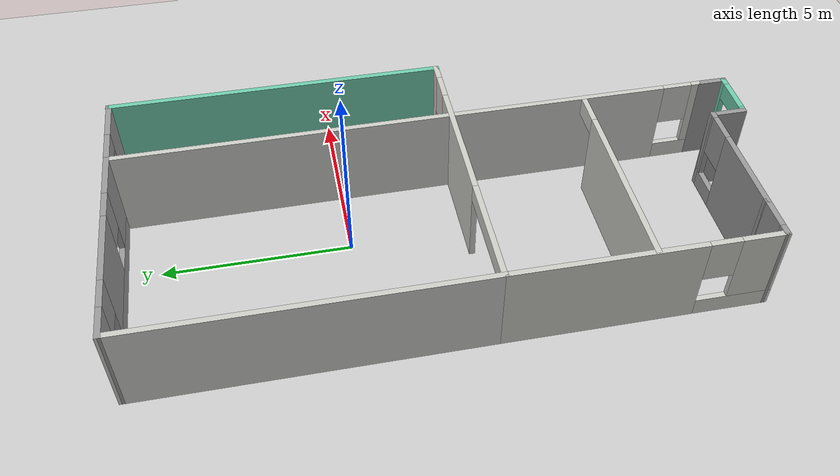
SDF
<sdf version="1.6">
 <world name="default">
  <model name="ground_plane">
   <static>1</static>
   <link name="link">
    <collision name="collision">
     <geometry><plane><normal>0 0 1</normal><size>100 100</size></plane></geometry>
     <surface>
      <contact><collide_bitmask>65535</collide_bitmask></contact>
      <friction><ode><mu>100</mu><mu2>50</mu2></ode></friction>
     </surface>
    </collision>
    <visual name="visual">
     <cast_shadows>0</cast_shadows>
     <geometry><plane><normal>0 0 1</normal><size>100 100</size></plane></geometry>
     <material>
      <script><uri>file://media/materials/scripts/gazebo.material</uri><name>Gazebo/Grey</name></script>
     </material>
    </visual>
   </link>
  </model>
  <model name="floor_plan">
   <pose>0.13995 -2.45491 0 0 -0 0</pose>
   <link name="Wall_1">
    <collision name="Wall_1_Collision">
     <geometry><box><size>9.18001 0.15 2.5</size></box></geometry>
     <pose>0 0 1.25 0 -0 0</pose>
    </collision>
    <visual name="Wall_1_Visual">
     <pose>0 0 1.25 0 -0 0</pose>
     <geometry><box><size>9.18001 0.15 2.5</size></box></geometry>
     <material>
      <script><uri>file://media/materials/scripts/gazebo.material</uri><name>Gazebo/CeilingTiled</name></script>
      <ambient>1 1 1 1</ambient>
     </material>
     <meta><layer>0</layer></meta>
    </visual>
    <pose>-3.92495 3.8599 0 0 -0 1.5719</pose>
   </link>
   <link name="Wall_11">
    <pose>-3.92495 -4.0901 0 0 0 -1.57225</pose>
    <visual name="Wall_11_Visual_0">
     <pose>-0.997456 0 1.25 0 -0 0</pose>
     <geometry><box><size>5.0251 0.15 2.5</size></box></geometry>
     <material>
      <script><uri>file://media/materials/scripts/gazebo.material</uri><name>Gazebo/CeilingTiled</name></script>
      <ambient>0.435294 0.796078 0.67451 1</ambient>
     </material>
     <meta><layer>0</layer></meta>
    </visual>
    <collision name="Wall_11_Collision_0">
     <geometry><box><size>5.0251 0.15 2.5</size></box></geometry>
     <pose>-0.997456 0 1.25 0 -0 0</pose>
    </collision>
    <visual name="Wall_11_Visual_1">
     <pose>2.51255 0 0.25 0 -0 0</pose>
     <geometry><box><size>1.99491 0.15 0.5</size></box></geometry>
     <material>
      <script><uri>file://media/materials/scripts/gazebo.material</uri><name>Gazebo/CeilingTiled</name></script>
      <ambient>0.435294 0.796078 0.67451 1</ambient>
     </material>
     <meta><layer>0</layer></meta>
    </visual>
    <collision name="Wall_11_Collision_1">
     <geometry><box><size>1.99491 0.15 0.5</size></box></geometry>
     <pose>2.51255 0 0.25 0 -0 0</pose>
    </collision>
    <visual name="Wall_11_Visual_2">
     <pose>2.91255 0 1.5 0 -0 0</pose>
     <geometry><box><size>1.19491 0.15 2</size></box></geometry>
     <material>
      <script><uri>file://media/materials/scripts/gazebo.material</uri><name>Gazebo/CeilingTiled</name></script>
      <ambient>0.435294 0.796078 0.67451 1</ambient>
     </material>
     <meta><layer>0</layer></meta>
    </visual>
    <collision name="Wall_11_Collision_2">
     <geometry><box><size>1.19491 0.15 2</size></box></geometry>
     <pose>2.91255 0 1.5 0 -0 0</pose>
    </collision>
    <visual name="Wall_11_Visual_3">
     <pose>1.91509 0 1.9 0 -0 0</pose>
     <geometry><box><size>0.8 0.15 1.2</size></box></geometry>
     <material>
      <script><uri>file://media/materials/scripts/gazebo.material</uri><name>Gazebo/CeilingTiled</name></script>
      <ambient>0.435294 0.796078 0.67451 1</ambient>
     </material>
     <meta><layer>0</layer></meta>
    </visual>
    <collision name="Wall_11_Collision_3">
     <geometry><box><size>0.8 0.15 1.2</size></box></geometry>
     <pose>1.91509 0 1.9 0 -0 0</pose>
    </collision>
   </link>
   <link name="Wall_24">
    <pose>-3.37995 -7.5251 0 0 -0 0</pose>
    <visual name="Wall_24_Visual_0">
     <pose>-0.4625 0 1.25 0 -0 0</pose>
     <geometry><box><size>0.325 0.15 2.5</size></box></geometry>
     <material>
      <script><uri>file://media/materials/scripts/gazebo.material</uri><name>Gazebo/Grey</name></script>
      <ambient>1 1 1 1</ambient>
     </material>
     <meta><layer>0</layer></meta>
    </visual>
    <collision name="Wall_24_Collision_0">
     <geometry><box><size>0.325 0.15 2.5</size></box></geometry>
     <pose>-0.4625 0 1.25 0 -0 0</pose>
    </collision>
    <visual name="Wall_24_Visual_1">
     <pose>0.1625 0 0.25 0 -0 0</pose>
     <geometry><box><size>0.925 0.15 0.5</size></box></geometry>
     <material>
      <script><uri>file://media/materials/scripts/gazebo.material</uri><name>Gazebo/Grey</name></script>
      <ambient>1 1 1 1</ambient>
     </material>
     <meta><layer>0</layer></meta>
    </visual>
    <collision name="Wall_24_Collision_1">
     <geometry><box><size>0.925 0.15 0.5</size></box></geometry>
     <pose>0.1625 0 0.25 0 -0 0</pose>
    </collision>
    <visual name="Wall_24_Visual_2">
     <pose>0.5625 0 1.5 0 -0 0</pose>
     <geometry><box><size>0.125 0.15 2</size></box></geometry>
     <material>
      <script><uri>file://media/materials/scripts/gazebo.material</uri><name>Gazebo/Grey</name></script>
      <ambient>1 1 1 1</ambient>
     </material>
     <meta><layer>0</layer></meta>
    </visual>
    <collision name="Wall_24_Collision_2">
     <geometry><box><size>0.125 0.15 2</size></box></geometry>
     <pose>0.5625 0 1.5 0 -0 0</pose>
    </collision>
    <visual name="Wall_24_Visual_3">
     <pose>0.1 0 1.9 0 -0 0</pose>
     <geometry><box><size>0.8 0.15 1.2</size></box></geometry>
     <material>
      <script><uri>file://media/materials/scripts/gazebo.material</uri><name>Gazebo/Grey</name></script>
      <ambient>1 1 1 1</ambient>
     </material>
     <meta><layer>0</layer></meta>
    </visual>
    <collision name="Wall_24_Collision_3">
     <geometry><box><size>0.8 0.15 1.2</size></box></geometry>
     <pose>0.1 0 1.9 0 -0 0</pose>
    </collision>
   </link>
   <link name="Wall_27">
    <pose>-1.15495 -7.5251 0 0 -0 0</pose>
    <visual name="Wall_27_Visual_0">
     <pose>-0.5175 0 1.25 0 -0 0</pose>
     <geometry><box><size>2.465 0.15 2.5</size></box></geometry>
     <material>
      <script><uri>file://media/materials/scripts/gazebo.material</uri><name>Gazebo/Grey</name></script>
      <ambient>1 1 1 1</ambient>
     </material>
     <meta><layer>0</layer></meta>
    </visual>
    <collision name="Wall_27_Collision_0">
     <geometry><box><size>2.465 0.15 2.5</size></box></geometry>
     <pose>-0.5175 0 1.25 0 -0 0</pose>
    </collision>
    <visual name="Wall_27_Visual_1">
     <pose>1.2325 0 0.25 0 -0 0</pose>
     <geometry><box><size>1.035 0.15 0.5</size></box></geometry>
     <material>
      <script><uri>file://media/materials/scripts/gazebo.material</uri><name>Gazebo/Grey</name></script>
      <ambient>1 1 1 1</ambient>
     </material>
     <meta><layer>0</layer></meta>
    </visual>
    <collision name="Wall_27_Collision_1">
     <geometry><box><size>1.035 0.15 0.5</size></box></geometry>
     <pose>1.2325 0 0.25 0 -0 0</pose>
    </collision>
    <visual name="Wall_27_Visual_2">
     <pose>1.6325 0 1.5 0 -0 0</pose>
     <geometry><box><size>0.235 0.15 2</size></box></geometry>
     <material>
      <script><uri>file://media/materials/scripts/gazebo.material</uri><name>Gazebo/Grey</name></script>
      <ambient>1 1 1 1</ambient>
     </material>
     <meta><layer>0</layer></meta>
    </visual>
    <collision name="Wall_27_Collision_2">
     <geometry><box><size>0.235 0.15 2</size></box></geometry>
     <pose>1.6325 0 1.5 0 -0 0</pose>
    </collision>
    <visual name="Wall_27_Visual_3">
     <pose>1.115 0 1.9 0 -0 0</pose>
     <geometry><box><size>0.8 0.15 1.2</size></box></geometry>
     <material>
      <script><uri>file://media/materials/scripts/gazebo.material</uri><name>Gazebo/Grey</name></script>
      <ambient>1 1 1 1</ambient>
     </material>
     <meta><layer>0</layer></meta>
    </visual>
    <collision name="Wall_27_Collision_3">
     <geometry><box><size>0.8 0.15 1.2</size></box></geometry>
     <pose>1.115 0 1.9 0 -0 0</pose>
    </collision>
   </link>
   <link name="Wall_28">
    <collision name="Wall_28_Collision">
     <geometry><box><size>1 0.15 2.5</size></box></geometry>
     <pose>0 0 1.25 0 -0 0</pose>
    </collision>
    <visual name="Wall_28_Visual">
     <pose>0 0 1.25 0 -0 0</pose>
     <geometry><box><size>1 0.15 2.5</size></box></geometry>
     <material>
      <script><uri>file://media/materials/scripts/gazebo.material</uri><name>Gazebo/Grey</name></script>
      <ambient>1 1 1 1</ambient>
     </material>
     <meta><layer>0</layer></meta>
    </visual>
    <pose>0.520047 -7.9501 0 0 0 -1.5708</pose>
   </link>
   <link name="Wall_29">
    <pose>1.19505 -8.37509 0 0 -0 0</pose>
    <visual name="Wall_29_Visual_0">
     <pose>-0.635 0 1.25 0 -0 0</pose>
     <geometry><box><size>0.23 0.15 2.5</size></box></geometry>
     <material>
      <script><uri>file://media/materials/scripts/gazebo.material</uri><name>Gazebo/Grey</name></script>
      <ambient>0.435294 0.796078 0.67451 1</ambient>
     </material>
     <meta><layer>0</layer></meta>
    </visual>
    <collision name="Wall_29_Collision_0">
     <geometry><box><size>0.23 0.15 2.5</size></box></geometry>
     <pose>-0.635 0 1.25 0 -0 0</pose>
    </collision>
    <visual name="Wall_29_Visual_1">
     <pose>0.61 0 1.25 0 -0 0</pose>
     <geometry><box><size>0.28 0.15 2.5</size></box></geometry>
     <material>
      <script><uri>file://media/materials/scripts/gazebo.material</uri><name>Gazebo/Grey</name></script>
      <ambient>0.435294 0.796078 0.67451 1</ambient>
     </material>
     <meta><layer>0</layer></meta>
    </visual>
    <collision name="Wall_29_Collision_1">
     <geometry><box><size>0.28 0.15 2.5</size></box></geometry>
     <pose>0.61 0 1.25 0 -0 0</pose>
    </collision>
    <visual name="Wall_29_Visual_2">
     <pose>-0.025 0 2.25 0 -0 0</pose>
     <geometry><box><size>0.99 0.15 0.5</size></box></geometry>
     <material>
      <script><uri>file://media/materials/scripts/gazebo.material</uri><name>Gazebo/Grey</name></script>
      <ambient>0.435294 0.796078 0.67451 1</ambient>
     </material>
     <meta><layer>0</layer></meta>
    </visual>
    <collision name="Wall_29_Collision_2">
     <geometry><box><size>0.99 0.15 0.5</size></box></geometry>
     <pose>-0.025 0 2.25 0 -0 0</pose>
    </collision>
   </link>
   <link name="Wall_3">
    <pose>0.005047 -0.645095 0 0 -0 0</pose>
    <visual name="Wall_3_Visual_0">
     <pose>-3.9325 0 1.25 0 -0 0</pose>
     <geometry><box><size>0.135 0.15 2.5</size></box></geometry>
     <material>
      <script><uri>file://media/materials/scripts/gazebo.material</uri><name>Gazebo/CeilingTiled</name></script>
      <ambient>1 1 1 1</ambient>
     </material>
     <meta><layer>0</layer></meta>
    </visual>
    <collision name="Wall_3_Collision_0">
     <geometry><box><size>0.135 0.15 2.5</size></box></geometry>
     <pose>-3.9325 0 1.25 0 -0 0</pose>
    </collision>
    <visual name="Wall_3_Visual_1">
     <pose>0.855 0 1.25 0 -0 0</pose>
     <geometry><box><size>3.64 0.15 2.5</size></box></geometry>
     <material>
      <script><uri>file://media/materials/scripts/gazebo.material</uri><name>Gazebo/CeilingTiled</name></script>
      <ambient>1 1 1 1</ambient>
     </material>
     <meta><layer>0</layer></meta>
    </visual>
    <collision name="Wall_3_Collision_1">
     <geometry><box><size>3.64 0.15 2.5</size></box></geometry>
     <pose>0.855 0 1.25 0 -0 0</pose>
    </collision>
    <visual name="Wall_3_Visual_2">
     <pose>3.3375 0 0.25 0 -0 0</pose>
     <geometry><box><size>1.325 0.15 0.5</size></box></geometry>
     <material>
      <script><uri>file://media/materials/scripts/gazebo.material</uri><name>Gazebo/CeilingTiled</name></script>
      <ambient>1 1 1 1</ambient>
     </material>
     <meta><layer>0</layer></meta>
    </visual>
    <collision name="Wall_3_Collision_2">
     <geometry><box><size>1.325 0.15 0.5</size></box></geometry>
     <pose>3.3375 0 0.25 0 -0 0</pose>
    </collision>
    <visual name="Wall_3_Visual_3">
     <pose>3.7375 0 1.5 0 -0 0</pose>
     <geometry><box><size>0.525 0.15 2</size></box></geometry>
     <material>
      <script><uri>file://media/materials/scripts/gazebo.material</uri><name>Gazebo/CeilingTiled</name></script>
      <ambient>1 1 1 1</ambient>
     </material>
     <meta><layer>0</layer></meta>
    </visual>
    <collision name="Wall_3_Collision_3">
     <geometry><box><size>0.525 0.15 2</size></box></geometry>
     <pose>3.7375 0 1.5 0 -0 0</pose>
    </collision>
    <visual name="Wall_3_Visual_4">
     <pose>3.075 0 1.9 0 -0 0</pose>
     <geometry><box><size>0.8 0.15 1.2</size></box></geometry>
     <material>
      <script><uri>file://media/materials/scripts/gazebo.material</uri><name>Gazebo/CeilingTiled</name></script>
      <ambient>1 1 1 1</ambient>
     </material>
     <meta><layer>0</layer></meta>
    </visual>
    <collision name="Wall_3_Collision_4">
     <geometry><box><size>0.8 0.15 1.2</size></box></geometry>
     <pose>3.075 0 1.9 0 -0 0</pose>
    </collision>
    <visual name="Wall_3_Visual_5">
     <pose>-2.415 0 2.25 0 -0 0</pose>
     <geometry><box><size>2.9 0.15 0.5</size></box></geometry>
     <material>
      <script><uri>file://media/materials/scripts/gazebo.material</uri><name>Gazebo/CeilingTiled</name></script>
      <ambient>1 1 1 1</ambient>
     </material>
     <meta><layer>0</layer></meta>
    </visual>
    <collision name="Wall_3_Collision_5">
     <geometry><box><size>2.9 0.15 0.5</size></box></geometry>
     <pose>-2.415 0 2.25 0 -0 0</pose>
    </collision>
   </link>
   <link name="Wall_30">
    <collision name="Wall_30_Collision">
     <geometry><box><size>0.91 0.15 2.5</size></box></geometry>
     <pose>0 0 1.25 0 -0 0</pose>
    </collision>
    <visual name="Wall_30_Visual">
     <pose>0 0 1.25 0 -0 0</pose>
     <geometry><box><size>0.91 0.15 2.5</size></box></geometry>
     <material>
      <script><uri>file://media/materials/scripts/gazebo.material</uri><name>Gazebo/Grey</name></script>
      <ambient>1 1 1 1</ambient>
     </material>
     <meta><layer>0</layer></meta>
    </visual>
    <pose>1.87005 -7.9951 0 0 -0 1.5708</pose>
   </link>
   <link name="Wall_32">
    <pose>-1.08995 -4.3251 0 0 -0 0</pose>
    <visual name="Wall_32_Visual_0">
     <pose>-0.4375 0 1.25 0 -0 0</pose>
     <geometry><box><size>4.875 0.15 2.5</size></box></geometry>
     <material>
      <script><uri>file://media/materials/scripts/gazebo.material</uri><name>Gazebo/CeilingTiled</name></script>
      <ambient>1 1 1 1</ambient>
     </material>
     <meta><layer>0</layer></meta>
    </visual>
    <collision name="Wall_32_Collision_0">
     <geometry><box><size>4.875 0.15 2.5</size></box></geometry>
     <pose>-0.4375 0 1.25 0 -0 0</pose>
    </collision>
    <visual name="Wall_32_Visual_1">
     <pose>2.4375 0 2.25 0 -0 0</pose>
     <geometry><box><size>0.875 0.15 0.5</size></box></geometry>
     <material>
      <script><uri>file://media/materials/scripts/gazebo.material</uri><name>Gazebo/CeilingTiled</name></script>
      <ambient>1 1 1 1</ambient>
     </material>
     <meta><layer>0</layer></meta>
    </visual>
    <collision name="Wall_32_Collision_1">
     <geometry><box><size>0.875 0.15 0.5</size></box></geometry>
     <pose>2.4375 0 2.25 0 -0 0</pose>
    </collision>
   </link>
   <link name="Wall_5">
    <collision name="Wall_5_Collision">
     <geometry><box><size>9.16001 0.15 2.5</size></box></geometry>
     <pose>0 0 1.25 0 -0 0</pose>
    </collision>
    <visual name="Wall_5_Visual">
     <pose>0 0 1.25 0 -0 0</pose>
     <geometry><box><size>9.16001 0.15 2.5</size></box></geometry>
     <material>
      <script><uri>file://media/materials/scripts/gazebo.material</uri><name>Gazebo/Grey</name></script>
      <ambient>0.435294 0.796078 0.67451 1</ambient>
     </material>
     <meta><layer>0</layer></meta>
    </visual>
    <pose>3.92505 3.8599 0 0 -0 1.57191</pose>
   </link>
   <link name="Wall_7">
    <pose>-0.004953 8.3649 0 0 0 -0.002548</pose>
    <visual name="Wall_7_Visual_0">
     <pose>-3.55751 0 1.25 0 -0 0</pose>
     <geometry><box><size>0.884983 0.15 2.5</size></box></geometry>
     <material>
      <script><uri>file://media/materials/scripts/gazebo.material</uri><name>Gazebo/Grey</name></script>
      <ambient>1 1 1 1</ambient>
     </material>
     <meta><layer>0</layer></meta>
    </visual>
    <collision name="Wall_7_Collision_0">
     <geometry><box><size>0.884983 0.15 2.5</size></box></geometry>
     <pose>-3.55751 0 1.25 0 -0 0</pose>
    </collision>
    <visual name="Wall_7_Visual_1">
     <pose>3.3878 0 1.25 0 -0 0</pose>
     <geometry><box><size>1.2244 0.15 2.5</size></box></geometry>
     <material>
      <script><uri>file://media/materials/scripts/gazebo.material</uri><name>Gazebo/Grey</name></script>
      <ambient>1 1 1 1</ambient>
     </material>
     <meta><layer>0</layer></meta>
    </visual>
    <collision name="Wall_7_Collision_1">
     <geometry><box><size>1.2244 0.15 2.5</size></box></geometry>
     <pose>3.3878 0 1.25 0 -0 0</pose>
    </collision>
    <visual name="Wall_7_Visual_2">
     <pose>-0.619706 0 0.25 0 -0 0</pose>
     <geometry><box><size>4.99062 0.15 0.5</size></box></geometry>
     <material>
      <script><uri>file://media/materials/scripts/gazebo.material</uri><name>Gazebo/Grey</name></script>
      <ambient>1 1 1 1</ambient>
     </material>
     <meta><layer>0</layer></meta>
    </visual>
    <collision name="Wall_7_Collision_2">
     <geometry><box><size>4.99062 0.15 0.5</size></box></geometry>
     <pose>-0.619706 0 0.25 0 -0 0</pose>
    </collision>
    <visual name="Wall_7_Visual_3">
     <pose>-1.2851 0 1.5 0 -0 0</pose>
     <geometry><box><size>2.05984 0.15 2</size></box></geometry>
     <material>
      <script><uri>file://media/materials/scripts/gazebo.material</uri><name>Gazebo/Grey</name></script>
      <ambient>1 1 1 1</ambient>
     </material>
     <meta><layer>0</layer></meta>
    </visual>
    <collision name="Wall_7_Collision_3">
     <geometry><box><size>2.05984 0.15 2</size></box></geometry>
     <pose>-1.2851 0 1.5 0 -0 0</pose>
    </collision>
    <visual name="Wall_7_Visual_4">
     <pose>1.21021 0 1.5 0 -0 0</pose>
     <geometry><box><size>1.33078 0.15 2</size></box></geometry>
     <material>
      <script><uri>file://media/materials/scripts/gazebo.material</uri><name>Gazebo/Grey</name></script>
      <ambient>1 1 1 1</ambient>
     </material>
     <meta><layer>0</layer></meta>
    </visual>
    <collision name="Wall_7_Collision_4">
     <geometry><box><size>1.33078 0.15 2</size></box></geometry>
     <pose>1.21021 0 1.5 0 -0 0</pose>
    </collision>
    <visual name="Wall_7_Visual_5">
     <pose>-2.71502 0 1.9 0 -0 0</pose>
     <geometry><box><size>0.8 0.15 1.2</size></box></geometry>
     <material>
      <script><uri>file://media/materials/scripts/gazebo.material</uri><name>Gazebo/Grey</name></script>
      <ambient>1 1 1 1</ambient>
     </material>
     <meta><layer>0</layer></meta>
    </visual>
    <collision name="Wall_7_Collision_5">
     <geometry><box><size>0.8 0.15 1.2</size></box></geometry>
     <pose>-2.71502 0 1.9 0 -0 0</pose>
    </collision>
    <visual name="Wall_7_Visual_6">
     <pose>0.144821 0 1.9 0 -0 0</pose>
     <geometry><box><size>0.8 0.15 1.2</size></box></geometry>
     <material>
      <script><uri>file://media/materials/scripts/gazebo.material</uri><name>Gazebo/Grey</name></script>
      <ambient>1 1 1 1</ambient>
     </material>
     <meta><layer>0</layer></meta>
    </visual>
    <collision name="Wall_7_Collision_6">
     <geometry><box><size>0.8 0.15 1.2</size></box></geometry>
     <pose>0.144821 0 1.9 0 -0 0</pose>
    </collision>
    <visual name="Wall_7_Visual_7">
     <pose>2.3256 0 2.25 0 -0 0</pose>
     <geometry><box><size>0.9 0.15 0.5</size></box></geometry>
     <material>
      <script><uri>file://media/materials/scripts/gazebo.material</uri><name>Gazebo/Grey</name></script>
      <ambient>1 1 1 1</ambient>
     </material>
     <meta><layer>0</layer></meta>
    </visual>
    <collision name="Wall_7_Collision_7">
     <geometry><box><size>0.9 0.15 0.5</size></box></geometry>
     <pose>2.3256 0 2.25 0 -0 0</pose>
    </collision>
   </link>
   <link name="Wall_9">
    <pose>1.83505 0.339905 0 0 0 -1.5664</pose>
    <visual name="Wall_9_Visual_0">
     <pose>-0.537453 0 1.25 0 -0 0</pose>
     <geometry><box><size>14.9852 0.15 2.5</size></box></geometry>
     <material>
      <script><uri>file://media/materials/scripts/gazebo.material</uri><name>Gazebo/CeilingTiled</name></script>
      <ambient>0.435294 0.796078 0.67451 1</ambient>
     </material>
     <meta><layer>0</layer></meta>
    </visual>
    <collision name="Wall_9_Collision_0">
     <geometry><box><size>14.9852 0.15 2.5</size></box></geometry>
     <pose>-0.537453 0 1.25 0 -0 0</pose>
    </collision>
    <visual name="Wall_9_Visual_1">
     <pose>7.49262 0 0.25 0 -0 0</pose>
     <geometry><box><size>1.07491 0.15 0.5</size></box></geometry>
     <material>
      <script><uri>file://media/materials/scripts/gazebo.material</uri><name>Gazebo/CeilingTiled</name></script>
      <ambient>0.435294 0.796078 0.67451 1</ambient>
     </material>
     <meta><layer>0</layer></meta>
    </visual>
    <collision name="Wall_9_Collision_1">
     <geometry><box><size>1.07491 0.15 0.5</size></box></geometry>
     <pose>7.49262 0 0.25 0 -0 0</pose>
    </collision>
    <visual name="Wall_9_Visual_2">
     <pose>7.89262 0 1.5 0 -0 0</pose>
     <geometry><box><size>0.274906 0.15 2</size></box></geometry>
     <material>
      <script><uri>file://media/materials/scripts/gazebo.material</uri><name>Gazebo/CeilingTiled</name></script>
      <ambient>0.435294 0.796078 0.67451 1</ambient>
     </material>
     <meta><layer>0</layer></meta>
    </visual>
    <collision name="Wall_9_Collision_2">
     <geometry><box><size>0.274906 0.15 2</size></box></geometry>
     <pose>7.89262 0 1.5 0 -0 0</pose>
    </collision>
    <visual name="Wall_9_Visual_3">
     <pose>7.35517 0 1.9 0 -0 0</pose>
     <geometry><box><size>0.8 0.15 1.2</size></box></geometry>
     <material>
      <script><uri>file://media/materials/scripts/gazebo.material</uri><name>Gazebo/CeilingTiled</name></script>
      <ambient>0.435294 0.796078 0.67451 1</ambient>
     </material>
     <meta><layer>0</layer></meta>
    </visual>
    <collision name="Wall_9_Collision_3">
     <geometry><box><size>0.8 0.15 1.2</size></box></geometry>
     <pose>7.35517 0 1.9 0 -0 0</pose>
    </collision>
   </link>
   <static>1</static>
  </model>
  <model name="my_ball">
   <link name="link_0">
    <inertial>
     <mass>1</mass>
     <inertia><ixx>0.1</ixx><ixy>0</ixy><ixz>0</ixz><iyy>0.1</iyy><iyz>0</iyz><izz>0.1</izz></inertia>
    </inertial>
    <visual name="visual">
     <geometry><sphere><radius>0.1</radius></sphere></geometry>
     <material>
      <lighting>1</lighting>
      <script><uri>file://media/materials/scripts/gazebo.material</uri><name>Gazebo/Grey</name></script>
      <shader type="pixel"><normal_map>__default__</normal_map></shader>
      <ambient>1 1 1 1</ambient>
      <diffuse>1 1 1 1</diffuse>
      <specular>1 1 1 1</specular>
      <emissive>1 1 1 1</emissive>
     </material>
    </visual>
    <collision name="collision">
     <geometry><sphere><radius>0.1</radius></sphere></geometry>
     <surface>
      <friction>
       <ode><mu>1</mu><mu2>1</mu2><fdir1>0 0 0</fdir1><slip1>0</slip1><slip2>0</slip2></ode>
       <torsional>
        <coefficient>1</coefficient>
        <patch_radius>0</patch_radius>
        <surface_radius>0</surface_radius>
        <use_patch_radius>1</use_patch_radius>
        <ode><slip>0</slip></ode>
       </torsional>
      </friction>
      <bounce><restitution_coefficient>0</restitution_coefficient><threshold>1e+06</threshold></bounce>
      <contact>
       <collide_without_contact>0</collide_without_contact>
       <collide_without_contact_bitmask>1</collide_without_contact_bitmask>
       <collide_bitmask>1</collide_bitmask>
       <ode>
        <soft_cfm>0</soft_cfm>
        <soft_erp>0.2</soft_erp>
        <kp>1e+13</kp>
        <kd>1</kd>
        <max_vel>0.01</max_vel>
        <min_depth>0</min_depth>
       </ode>
       <bullet>
        <split_impulse>1</split_impulse>
        <split_impulse_penetration_threshold>-0.01</split_impulse_penetration_threshold>
        <soft_cfm>0</soft_cfm>
        <soft_erp>0.2</soft_erp>
        <kp>1e+13</kp>
        <kd>1</kd>
       </bullet>
      </contact>
     </surface>
    </collision>
   </link>
   <static>0</static>
   <pose>5.29559 5.55846 0.1 0 -0 0</pose>
  </model>
 </world>
</sdf>
